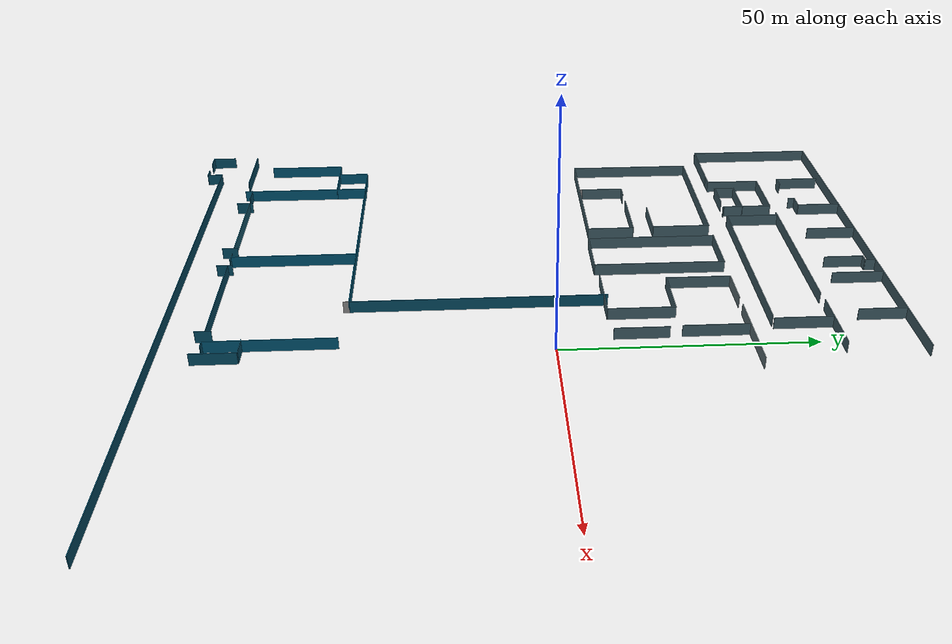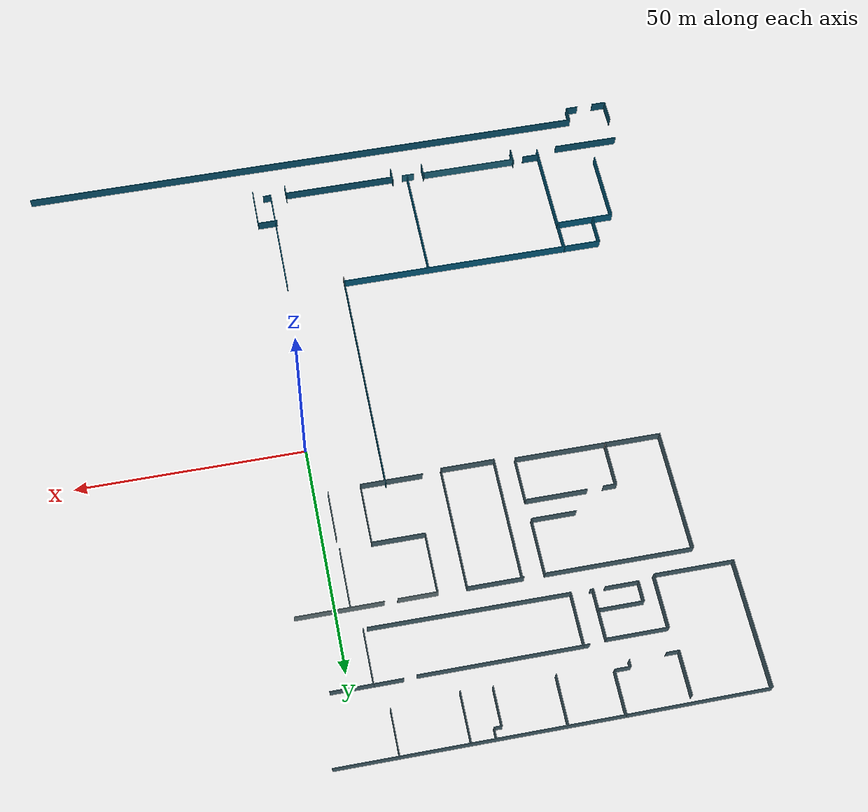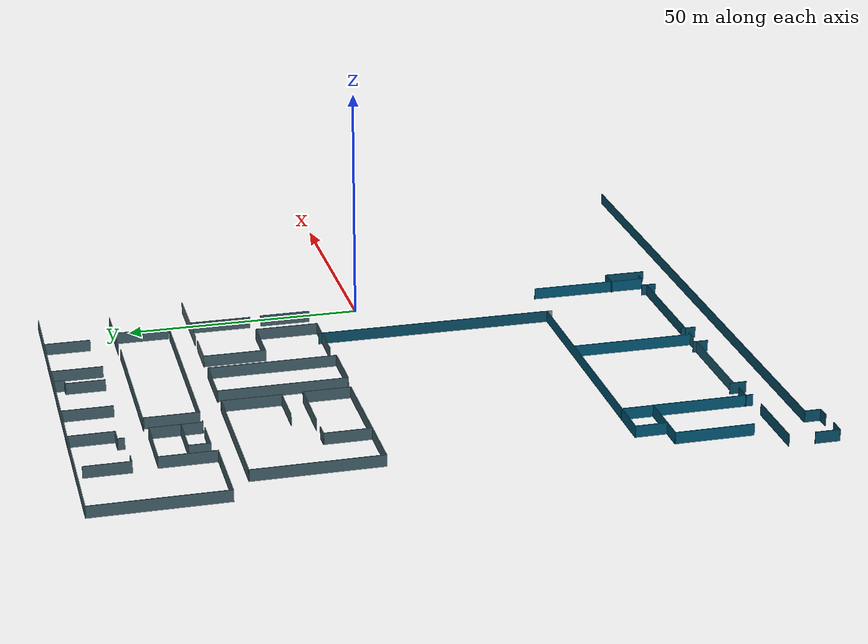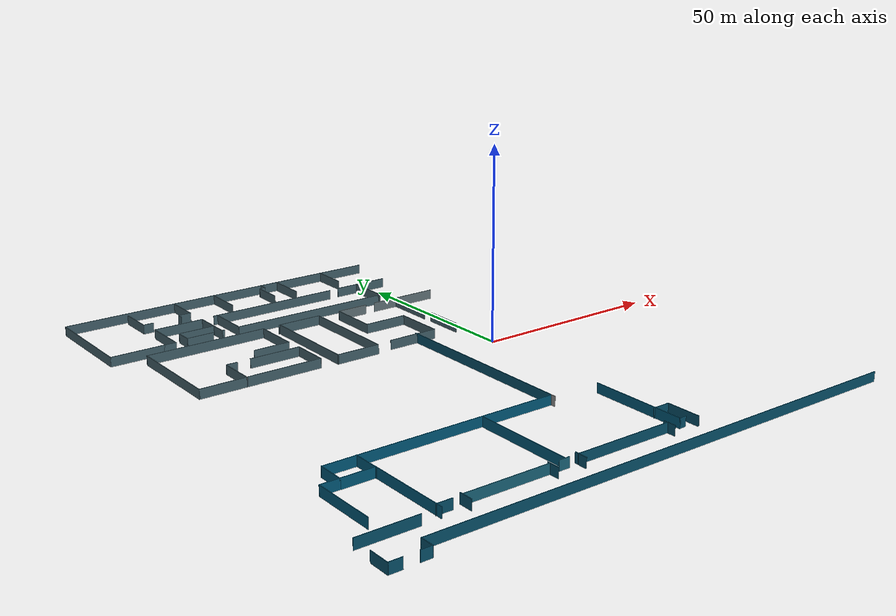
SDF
<sdf version="1.6">
 <model name="eceb">
  <pose>2.10284 -4.41124 0 0 -0 0</pose>
  <link name="Wall_10">
   <collision name="Wall_10_Collision">
    <geometry><box><size>7.25 0.15 2.5</size></box></geometry>
    <pose>0 0 1.25 0 -0 0</pose>
   </collision>
   <visual name="Wall_10_Visual">
    <pose>0 0 1.25 0 -0 0</pose>
    <geometry><box><size>7.25 0.15 2.5</size></box></geometry>
    <material>
     <script><uri>file://media/materials/scripts/gazebo.material</uri><name>Gazebo/Grey</name></script>
     <ambient>0.282353 0.403922 0.447059 1</ambient>
    </material>
    <meta><layer>0</layer></meta>
   </visual>
   <pose>-61.0369 46.7249 0 0 -0 0</pose>
  </link>
  <link name="Wall_102">
   <collision name="Wall_102_Collision">
    <geometry><box><size>12 0.15 2.5</size></box></geometry>
    <pose>0 0 1.25 0 -0 0</pose>
   </collision>
   <visual name="Wall_102_Visual">
    <pose>0 0 1.25 0 -0 0</pose>
    <geometry><box><size>12 0.15 2.5</size></box></geometry>
    <material>
     <script><uri>file://media/materials/scripts/gazebo.material</uri><name>Gazebo/Grey</name></script>
     <ambient>0.282353 0.403922 0.447059 1</ambient>
    </material>
    <meta><layer>0</layer></meta>
   </visual>
   <pose>-35.6171 41.6407 0 0 -0 0</pose>
  </link>
  <link name="Wall_103">
   <collision name="Wall_103_Collision">
    <geometry><box><size>27.25 0.15 2.5</size></box></geometry>
    <pose>0 0 1.25 0 -0 0</pose>
   </collision>
   <visual name="Wall_103_Visual">
    <pose>0 0 1.25 0 -0 0</pose>
    <geometry><box><size>27.25 0.15 2.5</size></box></geometry>
    <material>
     <script><uri>file://media/materials/scripts/gazebo.material</uri><name>Gazebo/Grey</name></script>
     <ambient>0.282353 0.403922 0.447059 1</ambient>
    </material>
    <meta><layer>0</layer></meta>
   </visual>
   <pose>-29.6921 28.0907 0 0 -0 -1.5708</pose>
  </link>
  <link name="Wall_104">
   <collision name="Wall_104_Collision">
    <geometry><box><size>11.75 0.15 2.5</size></box></geometry>
    <pose>0 0 1.25 0 -0 0</pose>
   </collision>
   <visual name="Wall_104_Visual">
    <pose>0 0 1.25 0 -0 0</pose>
    <geometry><box><size>11.75 0.15 2.5</size></box></geometry>
    <material>
     <script><uri>file://media/materials/scripts/gazebo.material</uri><name>Gazebo/Grey</name></script>
     <ambient>0.282353 0.403922 0.447059 1</ambient>
    </material>
    <meta><layer>0</layer></meta>
   </visual>
   <pose>-35.4921 14.5407 0 0 -0 3.14159</pose>
  </link>
  <link name="Wall_105">
   <collision name="Wall_105_Collision">
    <geometry><box><size>27.25 0.15 2.5</size></box></geometry>
    <pose>0 0 1.25 0 -0 0</pose>
   </collision>
   <visual name="Wall_105_Visual">
    <pose>0 0 1.25 0 -0 0</pose>
    <geometry><box><size>27.25 0.15 2.5</size></box></geometry>
    <material>
     <script><uri>file://media/materials/scripts/gazebo.material</uri><name>Gazebo/Grey</name></script>
     <ambient>0.282353 0.403922 0.447059 1</ambient>
    </material>
    <meta><layer>0</layer></meta>
   </visual>
   <pose>-41.2921 28.0907 0 0 -0 1.5708</pose>
  </link>
  <link name="Wall_107">
   <collision name="Wall_107_Collision">
    <geometry><box><size>13.25 0.15 2.5</size></box></geometry>
    <pose>0 0 1.25 0 -0 0</pose>
   </collision>
   <visual name="Wall_107_Visual">
    <pose>0 0 1.25 0 -0 0</pose>
    <geometry><box><size>13.25 0.15 2.5</size></box></geometry>
    <material>
     <script><uri>file://media/materials/scripts/gazebo.material</uri><name>Gazebo/Grey</name></script>
     <ambient>0.282353 0.403922 0.447059 1</ambient>
    </material>
    <meta><layer>0</layer></meta>
   </visual>
   <pose>-23.5412 35.0069 0 0 -0 -1.5708</pose>
  </link>
  <link name="Wall_108">
   <collision name="Wall_108_Collision">
    <geometry><box><size>11.5 0.15 2.5</size></box></geometry>
    <pose>0 0 1.25 0 -0 0</pose>
   </collision>
   <visual name="Wall_108_Visual">
    <pose>0 0 1.25 0 -0 0</pose>
    <geometry><box><size>11.5 0.15 2.5</size></box></geometry>
    <material>
     <script><uri>file://media/materials/scripts/gazebo.material</uri><name>Gazebo/Grey</name></script>
     <ambient>0.282353 0.403922 0.447059 1</ambient>
    </material>
    <meta><layer>0</layer></meta>
   </visual>
   <pose>-17.8662 28.4569 0 0 -0 0</pose>
  </link>
  <link name="Wall_109">
   <collision name="Wall_109_Collision">
    <geometry><box><size>13.5 0.15 2.5</size></box></geometry>
    <pose>0 0 1.25 0 -0 0</pose>
   </collision>
   <visual name="Wall_109_Visual">
    <pose>0 0 1.25 0 -0 0</pose>
    <geometry><box><size>13.5 0.15 2.5</size></box></geometry>
    <material>
     <script><uri>file://media/materials/scripts/gazebo.material</uri><name>Gazebo/Grey</name></script>
     <ambient>0.282353 0.403922 0.447059 1</ambient>
    </material>
    <meta><layer>0</layer></meta>
   </visual>
   <pose>-12.1912 21.7819 0 0 -0 -1.5708</pose>
  </link>
  <link name="Wall_110">
   <collision name="Wall_110_Collision">
    <geometry><box><size>13.5 0.15 2.5</size></box></geometry>
    <pose>0 0 1.25 0 -0 0</pose>
   </collision>
   <visual name="Wall_110_Visual">
    <pose>0 0 1.25 0 -0 0</pose>
    <geometry><box><size>13.5 0.15 2.5</size></box></geometry>
    <material>
     <script><uri>file://media/materials/scripts/gazebo.material</uri><name>Gazebo/Grey</name></script>
     <ambient>0.282353 0.403922 0.447059 1</ambient>
    </material>
    <meta><layer>0</layer></meta>
   </visual>
   <pose>-18.8662 15.1069 0 0 -0 3.14159</pose>
  </link>
  <link name="Wall_112">
   <collision name="Wall_112_Collision">
    <geometry><box><size>8.5 0.15 2.5</size></box></geometry>
    <pose>0 0 1.25 0 -0 0</pose>
   </collision>
   <visual name="Wall_112_Visual">
    <pose>0 0 1.25 0 -0 0</pose>
    <geometry><box><size>8.5 0.15 2.5</size></box></geometry>
    <material>
     <script><uri>file://media/materials/scripts/gazebo.material</uri><name>Gazebo/Grey</name></script>
     <ambient>0.411765 0.486275 0.509804 1</ambient>
    </material>
    <meta><layer>0</layer></meta>
   </visual>
   <pose>-19.3662 41.557 0 0 -0 0</pose>
  </link>
  <link name="Wall_114">
   <collision name="Wall_114_Collision">
    <geometry><box><size>18.75 0.15 2.5</size></box></geometry>
    <pose>0 0 1.25 0 -0 0</pose>
   </collision>
   <visual name="Wall_114_Visual">
    <pose>0 0 1.25 0 -0 0</pose>
    <geometry><box><size>18.75 0.15 2.5</size></box></geometry>
    <material>
     <script><uri>file://media/materials/scripts/gazebo.material</uri><name>Gazebo/Grey</name></script>
     <ambient>0.411765 0.486275 0.509804 1</ambient>
    </material>
    <meta><layer>0</layer></meta>
   </visual>
   <pose>-3.06602 41.6234 0 0 -0 0</pose>
  </link>
  <link name="Wall_12">
   <collision name="Wall_12_Collision">
    <geometry><box><size>4.5 0.15 2.5</size></box></geometry>
    <pose>0 0 1.25 0 -0 0</pose>
   </collision>
   <visual name="Wall_12_Visual">
    <pose>0 0 1.25 0 -0 0</pose>
    <geometry><box><size>4.5 0.15 2.5</size></box></geometry>
    <material>
     <script><uri>file://media/materials/scripts/gazebo.material</uri><name>Gazebo/Grey</name></script>
     <ambient>0.282353 0.403922 0.447059 1</ambient>
    </material>
    <meta><layer>0</layer></meta>
   </visual>
   <pose>-54.9869 48.8998 0 0 -0 -1.5708</pose>
  </link>
  <link name="Wall_124">
   <collision name="Wall_124_Collision">
    <geometry><box><size>13 0.15 2.5</size></box></geometry>
    <pose>0 0 1.25 0 -0 0</pose>
   </collision>
   <visual name="Wall_124_Visual">
    <pose>0 0 1.25 0 -0 0</pose>
    <geometry><box><size>13 0.15 2.5</size></box></geometry>
    <material>
     <script><uri>file://media/materials/scripts/gazebo.material</uri><name>Gazebo/Grey</name></script>
     <ambient>0.282353 0.403922 0.447059 1</ambient>
    </material>
    <meta><layer>0</layer></meta>
   </visual>
   <pose>-5.3618 35.0405 0 0 -0 1.5708</pose>
  </link>
  <link name="Wall_13">
   <collision name="Wall_13_Collision">
    <geometry><box><size>0.75 0.15 2.5</size></box></geometry>
    <pose>0 0 1.25 0 -0 0</pose>
   </collision>
   <visual name="Wall_13_Visual">
    <pose>0 0 1.25 0 -0 0</pose>
    <geometry><box><size>0.75 0.15 2.5</size></box></geometry>
    <material>
     <script><uri>file://media/materials/scripts/gazebo.material</uri><name>Gazebo/Grey</name></script>
     <ambient>0.282353 0.403922 0.447059 1</ambient>
    </material>
    <meta><layer>0</layer></meta>
   </visual>
   <pose>-54.6869 46.7249 0 0 -0 0</pose>
  </link>
  <link name="Wall_131">
   <collision name="Wall_131_Collision">
    <geometry><box><size>10.75 0.15 2.5</size></box></geometry>
    <pose>0 0 1.25 0 -0 0</pose>
   </collision>
   <visual name="Wall_131_Visual">
    <pose>0 0 1.25 0 -0 0</pose>
    <geometry><box><size>10.75 0.15 2.5</size></box></geometry>
    <material>
     <script><uri>file://media/materials/scripts/gazebo.material</uri><name>Gazebo/Grey</name></script>
     <ambient>0.282353 0.403922 0.447059 1</ambient>
    </material>
    <meta><layer>0</layer></meta>
   </visual>
   <pose>-5.10917 20.8238 0 0 -0 -1.5708</pose>
  </link>
  <link name="Wall_134">
   <collision name="Wall_134_Collision">
    <geometry><box><size>51 0.15 2.5</size></box></geometry>
    <pose>0 0 1.25 0 -0 0</pose>
   </collision>
   <visual name="Wall_134_Visual">
    <pose>0 0 1.25 0 -0 0</pose>
    <geometry><box><size>51 0.15 2.5</size></box></geometry>
    <material>
     <script><uri>file://media/materials/scripts/gazebo.material</uri><name>Gazebo/Grey</name></script>
     <ambient>0.0313726 0.333333 0.443137 1</ambient>
    </material>
    <meta><layer>0</layer></meta>
   </visual>
   <pose>-17.5625 -9.64396 0 0 -0 -1.5708</pose>
  </link>
  <link name="Wall_135">
   <collision name="Wall_135_Collision">
    <geometry><box><size>59.75 0.15 2.5</size></box></geometry>
    <pose>0 0 1.25 0 -0 0</pose>
   </collision>
   <visual name="Wall_135_Visual">
    <pose>0 0 1.25 0 -0 0</pose>
    <geometry><box><size>59.75 0.15 2.5</size></box></geometry>
    <material>
     <script><uri>file://media/materials/scripts/gazebo.material</uri><name>Gazebo/Grey</name></script>
     <ambient>0.00784314 0.372549 0.505882 1</ambient>
    </material>
    <meta><layer>0</layer></meta>
   </visual>
   <pose>-47.3625 -35.069 0 0 -0 3.14159</pose>
  </link>
  <link name="Wall_137">
   <collision name="Wall_137_Collision">
    <geometry><box><size>6.75 0.15 2.5</size></box></geometry>
    <pose>0 0 1.25 0 -0 0</pose>
   </collision>
   <visual name="Wall_137_Visual">
    <pose>0 0 1.25 0 -0 0</pose>
    <geometry><box><size>6.75 0.15 2.5</size></box></geometry>
    <material>
     <script><uri>file://media/materials/scripts/gazebo.material</uri><name>Gazebo/Grey</name></script>
     <ambient>0.00784314 0.372549 0.505882 1</ambient>
    </material>
    <meta><layer>0</layer></meta>
   </visual>
   <pose>-77.1625 -38.369 0 0 -0 -1.5708</pose>
  </link>
  <link name="Wall_138">
   <collision name="Wall_138_Collision">
    <geometry><box><size>4.75 0.15 2.5</size></box></geometry>
    <pose>0 0 1.25 0 -0 0</pose>
   </collision>
   <visual name="Wall_138_Visual">
    <pose>0 0 1.25 0 -0 0</pose>
    <geometry><box><size>4.75 0.15 2.5</size></box></geometry>
    <material>
     <script><uri>file://media/materials/scripts/gazebo.material</uri><name>Gazebo/Grey</name></script>
     <ambient>0.00784314 0.372549 0.505882 1</ambient>
    </material>
    <meta><layer>0</layer></meta>
   </visual>
   <pose>-79.4625 -41.669 0 0 -0 3.14159</pose>
  </link>
  <link name="Wall_139">
   <collision name="Wall_139_Collision">
    <geometry><box><size>16.5 0.15 2.5</size></box></geometry>
    <pose>0 0 1.25 0 -0 0</pose>
   </collision>
   <visual name="Wall_139_Visual">
    <pose>0 0 1.25 0 -0 0</pose>
    <geometry><box><size>16.5 0.15 2.5</size></box></geometry>
    <material>
     <script><uri>file://media/materials/scripts/gazebo.material</uri><name>Gazebo/Grey</name></script>
     <ambient>0.00784314 0.372549 0.505882 1</ambient>
    </material>
    <meta><layer>0</layer></meta>
   </visual>
   <pose>-81.7625 -49.844 0 0 -0 -1.5708</pose>
  </link>
  <link name="Wall_141">
   <collision name="Wall_141_Collision">
    <geometry><box><size>14.75 0.15 2.5</size></box></geometry>
    <pose>0 0 1.25 0 -0 0</pose>
   </collision>
   <visual name="Wall_141_Visual">
    <pose>0 0 1.25 0 -0 0</pose>
    <geometry><box><size>14.75 0.15 2.5</size></box></geometry>
    <material>
     <script><uri>file://media/materials/scripts/gazebo.material</uri><name>Gazebo/Grey</name></script>
     <ambient>0.0313726 0.333333 0.443137 1</ambient>
    </material>
    <meta><layer>0</layer></meta>
   </visual>
   <pose>-80.7569 -62.752 0 0 -0 0</pose>
  </link>
  <link name="Wall_143">
   <collision name="Wall_143_Collision">
    <geometry><box><size>5.25 0.15 2.5</size></box></geometry>
    <pose>0 0 1.25 0 -0 0</pose>
   </collision>
   <visual name="Wall_143_Visual">
    <pose>0 0 1.25 0 -0 0</pose>
    <geometry><box><size>5.25 0.15 2.5</size></box></geometry>
    <material>
     <script><uri>file://media/materials/scripts/gazebo.material</uri><name>Gazebo/Grey</name></script>
     <ambient>0.0313726 0.333333 0.443137 1</ambient>
    </material>
    <meta><layer>0</layer></meta>
   </visual>
   <pose>-88.1514 -70.7787 0 0 -0 -1.5708</pose>
  </link>
  <link name="Wall_144">
   <collision name="Wall_144_Collision">
    <geometry><box><size>3.25 0.15 2.5</size></box></geometry>
    <pose>0 0 1.25 0 -0 0</pose>
   </collision>
   <visual name="Wall_144_Visual">
    <pose>0 0 1.25 0 -0 0</pose>
    <geometry><box><size>3.25 0.15 2.5</size></box></geometry>
    <material>
     <script><uri>file://media/materials/scripts/gazebo.material</uri><name>Gazebo/Grey</name></script>
     <ambient>0.0313726 0.333333 0.443137 1</ambient>
    </material>
    <meta><layer>0</layer></meta>
   </visual>
   <pose>-86.6014 -73.3287 0 0 -0 0</pose>
  </link>
  <link name="Wall_146">
   <collision name="Wall_146_Collision">
    <geometry><box><size>2.75 0.15 2.5</size></box></geometry>
    <pose>0 0 1.25 0 -0 0</pose>
   </collision>
   <visual name="Wall_146_Visual">
    <pose>0 0 1.25 0 -0 0</pose>
    <geometry><box><size>2.75 0.15 2.5</size></box></geometry>
    <material>
     <script><uri>file://media/materials/scripts/gazebo.material</uri><name>Gazebo/Grey</name></script>
     <ambient>0.0313726 0.333333 0.443137 1</ambient>
    </material>
    <meta><layer>0</layer></meta>
   </visual>
   <pose>-79.9583 -73.2333 0 0 -0 0</pose>
  </link>
  <link name="Wall_147">
   <collision name="Wall_147_Collision">
    <geometry><box><size>3.5 0.15 2.5</size></box></geometry>
    <pose>0 0 1.25 0 -0 0</pose>
   </collision>
   <visual name="Wall_147_Visual">
    <pose>0 0 1.25 0 -0 0</pose>
    <geometry><box><size>3.5 0.15 2.5</size></box></geometry>
    <material>
     <script><uri>file://media/materials/scripts/gazebo.material</uri><name>Gazebo/Grey</name></script>
     <ambient>0.0313726 0.333333 0.443137 1</ambient>
    </material>
    <meta><layer>0</layer></meta>
   </visual>
   <pose>-78.6583 -71.5583 0 0 -0 1.5708</pose>
  </link>
  <link name="Wall_148">
   <collision name="Wall_148_Collision">
    <geometry><box><size>129.5 0.15 2.5</size></box></geometry>
    <pose>0 0 1.25 0 -0 0</pose>
   </collision>
   <visual name="Wall_148_Visual">
    <pose>0 0 1.25 0 -0 0</pose>
    <geometry><box><size>129.5 0.15 2.5</size></box></geometry>
    <material>
     <script><uri>file://media/materials/scripts/gazebo.material</uri><name>Gazebo/Grey</name></script>
     <ambient>0.0313726 0.333333 0.443137 1</ambient>
    </material>
    <meta><layer>0</layer></meta>
   </visual>
   <pose>-13.9833 -69.8833 0 0 -0 0</pose>
  </link>
  <link name="Wall_15">
   <collision name="Wall_15_Collision">
    <geometry><box><size>1.25 0.15 2.5</size></box></geometry>
    <pose>0 0 1.25 0 -0 0</pose>
   </collision>
   <visual name="Wall_15_Visual">
    <pose>0 0 1.25 0 -0 0</pose>
    <geometry><box><size>1.25 0.15 2.5</size></box></geometry>
    <material>
     <script><uri>file://media/materials/scripts/gazebo.material</uri><name>Gazebo/Grey</name></script>
     <ambient>0.282353 0.403922 0.447059 1</ambient>
    </material>
    <meta><layer>0</layer></meta>
   </visual>
   <pose>-50.8487 57.9626 0 0 -0 0</pose>
  </link>
  <link name="Wall_156">
   <collision name="Wall_156_Collision">
    <geometry><box><size>21.25 0.15 2.5</size></box></geometry>
    <pose>0 0 1.25 0 -0 0</pose>
   </collision>
   <visual name="Wall_156_Visual">
    <pose>0 0 1.25 0 -0 0</pose>
    <geometry><box><size>21.25 0.15 2.5</size></box></geometry>
    <material>
     <script><uri>file://media/materials/scripts/gazebo.material</uri><name>Gazebo/Grey</name></script>
     <ambient>0.00784314 0.372549 0.505882 1</ambient>
    </material>
    <meta><layer>0</layer></meta>
   </visual>
   <pose>-68.8592 -52.1746 0 0 -0 1.5708</pose>
  </link>
  <link name="Wall_157">
   <collision name="Wall_157_Collision">
    <geometry><box><size>8.4534 0.15 2.5</size></box></geometry>
    <pose>0 0 1.25 0 -0 0</pose>
   </collision>
   <visual name="Wall_157_Visual">
    <pose>0 0 1.25 0 -0 0</pose>
    <geometry><box><size>8.4534 0.15 2.5</size></box></geometry>
    <material>
     <script><uri>file://media/materials/scripts/gazebo.material</uri><name>Gazebo/Grey</name></script>
     <ambient>0.00784314 0.372549 0.505882 1</ambient>
    </material>
    <meta><layer>0</layer></meta>
   </visual>
   <pose>-73.0109 -41.6468 0 0 -0 -3.13625</pose>
  </link>
  <link name="Wall_159">
   <collision name="Wall_159_Collision">
    <geometry><box><size>7 0.15 2.5</size></box></geometry>
    <pose>0 0 1.25 0 -0 0</pose>
   </collision>
   <visual name="Wall_159_Visual">
    <pose>0 0 1.25 0 -0 0</pose>
    <geometry><box><size>7 0.15 2.5</size></box></geometry>
    <material>
     <script><uri>file://media/materials/scripts/gazebo.material</uri><name>Gazebo/Grey</name></script>
     <ambient>0.00784314 0.372549 0.505882 1</ambient>
    </material>
    <meta><layer>0</layer></meta>
   </visual>
   <pose>-68.9119 -38.4042 0 0 -0 -1.5708</pose>
  </link>
  <link name="Wall_16">
   <collision name="Wall_16_Collision">
    <geometry><box><size>11.5 0.15 2.5</size></box></geometry>
    <pose>0 0 1.25 0 -0 0</pose>
   </collision>
   <visual name="Wall_16_Visual">
    <pose>0 0 1.25 0 -0 0</pose>
    <geometry><box><size>11.5 0.15 2.5</size></box></geometry>
    <material>
     <script><uri>file://media/materials/scripts/gazebo.material</uri><name>Gazebo/Grey</name></script>
     <ambient>0.282353 0.403922 0.447059 1</ambient>
    </material>
    <meta><layer>0</layer></meta>
   </visual>
   <pose>-50.2987 52.2876 0 0 -0 -1.5708</pose>
  </link>
  <link name="Wall_161">
   <collision name="Wall_161_Collision">
    <geometry><box><size>4 0.15 2.5</size></box></geometry>
    <pose>0 0 1.25 0 -0 0</pose>
   </collision>
   <visual name="Wall_161_Visual">
    <pose>0 0 1.25 0 -0 0</pose>
    <geometry><box><size>4 0.15 2.5</size></box></geometry>
    <material>
     <script><uri>file://media/materials/scripts/gazebo.material</uri><name>Gazebo/Grey</name></script>
     <ambient>0.0313726 0.333333 0.443137 1</ambient>
    </material>
    <meta><layer>0</layer></meta>
   </visual>
   <pose>-67.0768 -61.2451 0 0 -0 3.14159</pose>
  </link>
  <link name="Wall_163">
   <collision name="Wall_163_Collision">
    <geometry><box><size>3.5 0.15 2.5</size></box></geometry>
    <pose>0 0 1.25 0 -0 0</pose>
   </collision>
   <visual name="Wall_163_Visual">
    <pose>0 0 1.25 0 -0 0</pose>
    <geometry><box><size>3.5 0.15 2.5</size></box></geometry>
    <material>
     <script><uri>file://media/materials/scripts/gazebo.material</uri><name>Gazebo/Grey</name></script>
     <ambient>0.0313726 0.333333 0.443137 1</ambient>
    </material>
    <meta><layer>0</layer></meta>
   </visual>
   <pose>-62.6452 -62.0149 0 0 -0 -1.5708</pose>
  </link>
  <link name="Wall_166">
   <collision name="Wall_166_Collision">
    <geometry><box><size>21.5 0.15 2.5</size></box></geometry>
    <pose>0 0 1.25 0 -0 0</pose>
   </collision>
   <visual name="Wall_166_Visual">
    <pose>0 0 1.25 0 -0 0</pose>
    <geometry><box><size>21.5 0.15 2.5</size></box></geometry>
    <material>
     <script><uri>file://media/materials/scripts/gazebo.material</uri><name>Gazebo/Grey</name></script>
     <ambient>0.109804 0.415686 0.505882 1</ambient>
    </material>
    <meta><layer>0</layer></meta>
   </visual>
   <pose>-51.8547 -61.0074 0 0 -0 0</pose>
  </link>
  <link name="Wall_168">
   <collision name="Wall_168_Collision">
    <geometry><box><size>3.25 0.15 2.5</size></box></geometry>
    <pose>0 0 1.25 0 -0 0</pose>
   </collision>
   <visual name="Wall_168_Visual">
    <pose>0 0 1.25 0 -0 0</pose>
    <geometry><box><size>3.25 0.15 2.5</size></box></geometry>
    <material>
     <script><uri>file://media/materials/scripts/gazebo.material</uri><name>Gazebo/Grey</name></script>
     <ambient>0.0313726 0.333333 0.443137 1</ambient>
    </material>
    <meta><layer>0</layer></meta>
   </visual>
   <pose>-40.9887 -61.8787 0 0 -0 -1.5708</pose>
  </link>
  <link name="Wall_17">
   <collision name="Wall_17_Collision">
    <geometry><box><size>42.5 0.15 2.5</size></box></geometry>
    <pose>0 0 1.25 0 -0 0</pose>
   </collision>
   <visual name="Wall_17_Visual">
    <pose>0 0 1.25 0 -0 0</pose>
    <geometry><box><size>42.5 0.15 2.5</size></box></geometry>
    <material>
     <script><uri>file://media/materials/scripts/gazebo.material</uri><name>Gazebo/Grey</name></script>
     <ambient>0.282353 0.403922 0.447059 1</ambient>
    </material>
    <meta><layer>0</layer></meta>
   </visual>
   <pose>-29.1237 46.5292 0 0 -0 -0.00394</pose>
  </link>
  <link name="Wall_170">
   <collision name="Wall_170_Collision">
    <geometry><box><size>2.75 0.15 2.5</size></box></geometry>
    <pose>0 0 1.25 0 -0 0</pose>
   </collision>
   <visual name="Wall_170_Visual">
    <pose>0 0 1.25 0 -0 0</pose>
    <geometry><box><size>2.75 0.15 2.5</size></box></geometry>
    <material>
     <script><uri>file://media/materials/scripts/gazebo.material</uri><name>Gazebo/Grey</name></script>
     <ambient>0.109804 0.415686 0.505882 1</ambient>
    </material>
    <meta><layer>0</layer></meta>
   </visual>
   <pose>-37.3257 -61.0997 0 0 -0 0</pose>
  </link>
  <link name="Wall_172">
   <collision name="Wall_172_Collision">
    <geometry><box><size>26 0.15 2.5</size></box></geometry>
    <pose>0 0 1.25 0 -0 0</pose>
   </collision>
   <visual name="Wall_172_Visual">
    <pose>0 0 1.25 0 -0 0</pose>
    <geometry><box><size>26 0.15 2.5</size></box></geometry>
    <material>
     <script><uri>file://media/materials/scripts/gazebo.material</uri><name>Gazebo/Grey</name></script>
     <ambient>0.00784314 0.372549 0.505882 1</ambient>
    </material>
    <meta><layer>0</layer></meta>
   </visual>
   <pose>-37.0975 -48.0841 0 0 -0 -1.5708</pose>
  </link>
  <link name="Wall_177">
   <collision name="Wall_177_Collision">
    <geometry><box><size>1.25 0.15 2.5</size></box></geometry>
    <pose>0 0 1.25 0 -0 0</pose>
   </collision>
   <visual name="Wall_177_Visual">
    <pose>0 0 1.25 0 -0 0</pose>
    <geometry><box><size>1.25 0.15 2.5</size></box></geometry>
    <material>
     <script><uri>file://media/materials/scripts/gazebo.material</uri><name>Gazebo/Grey</name></script>
     <ambient>1 1 1 1</ambient>
    </material>
    <meta><layer>0</layer></meta>
   </visual>
   <pose>-17.5625 -35.619 0 0 -0 -1.5708</pose>
  </link>
  <link name="Wall_180">
   <collision name="Wall_180_Collision">
    <geometry><box><size>3.25 0.15 2.5</size></box></geometry>
    <pose>0 0 1.25 0 -0 0</pose>
   </collision>
   <visual name="Wall_180_Visual">
    <pose>0 0 1.25 0 -0 0</pose>
    <geometry><box><size>3.25 0.15 2.5</size></box></geometry>
    <material>
     <script><uri>file://media/materials/scripts/gazebo.material</uri><name>Gazebo/Grey</name></script>
     <ambient>0.0313726 0.333333 0.443137 1</ambient>
    </material>
    <meta><layer>0</layer></meta>
   </visual>
   <pose>-33.5892 -61.8114 0 0 -0 -1.5708</pose>
  </link>
  <link name="Wall_182">
   <collision name="Wall_182_Collision">
    <geometry><box><size>25.5 0.15 2.5</size></box></geometry>
    <pose>0 0 1.25 0 -0 0</pose>
   </collision>
   <visual name="Wall_182_Visual">
    <pose>0 0 1.25 0 -0 0</pose>
    <geometry><box><size>25.5 0.15 2.5</size></box></geometry>
    <material>
     <script><uri>file://media/materials/scripts/gazebo.material</uri><name>Gazebo/Grey</name></script>
     <ambient>0.0313726 0.333333 0.443137 1</ambient>
    </material>
    <meta><layer>0</layer></meta>
   </visual>
   <pose>-20.9591 -61.1593 0 0 -0 0</pose>
  </link>
  <link name="Wall_184">
   <collision name="Wall_184_Collision">
    <geometry><box><size>3.25 0.15 2.5</size></box></geometry>
    <pose>0 0 1.25 0 -0 0</pose>
   </collision>
   <visual name="Wall_184_Visual">
    <pose>0 0 1.25 0 -0 0</pose>
    <geometry><box><size>3.25 0.15 2.5</size></box></geometry>
    <material>
     <script><uri>file://media/materials/scripts/gazebo.material</uri><name>Gazebo/Grey</name></script>
     <ambient>0.0313726 0.333333 0.443137 1</ambient>
    </material>
    <meta><layer>0</layer></meta>
   </visual>
   <pose>-8.26712 -61.6318 0 0 -0 -1.5708</pose>
  </link>
  <link name="Wall_186">
   <collision name="Wall_186_Collision">
    <geometry><box><size>25.25 0.15 2.5</size></box></geometry>
    <pose>0 0 1.25 0 -0 0</pose>
   </collision>
   <visual name="Wall_186_Visual">
    <pose>0 0 1.25 0 -0 0</pose>
    <geometry><box><size>25.25 0.15 2.5</size></box></geometry>
    <material>
     <script><uri>file://media/materials/scripts/gazebo.material</uri><name>Gazebo/Grey</name></script>
     <ambient>0.00784314 0.372549 0.505882 1</ambient>
    </material>
    <meta><layer>0</layer></meta>
   </visual>
   <pose>-4.65246 -48.6917 0 0 -0 1.5708</pose>
  </link>
  <link name="Wall_194">
   <collision name="Wall_194_Collision">
    <geometry><box><size>9 0.15 2.5</size></box></geometry>
    <pose>0 0 1.25 0 -0 0</pose>
   </collision>
   <visual name="Wall_194_Visual">
    <pose>0 0 1.25 0 -0 0</pose>
    <geometry><box><size>9 0.15 2.5</size></box></geometry>
    <material>
     <script><uri>file://media/materials/scripts/gazebo.material</uri><name>Gazebo/Grey</name></script>
     <ambient>0.0313726 0.333333 0.443137 1</ambient>
    </material>
    <meta><layer>0</layer></meta>
   </visual>
   <pose>-0.646828 -58.4483 0 0 -0 1.5708</pose>
  </link>
  <link name="Wall_195">
   <collision name="Wall_195_Collision">
    <geometry><box><size>4.5 0.15 2.5</size></box></geometry>
    <pose>0 0 1.25 0 -0 0</pose>
   </collision>
   <visual name="Wall_195_Visual">
    <pose>0 0 1.25 0 -0 0</pose>
    <geometry><box><size>4.5 0.15 2.5</size></box></geometry>
    <material>
     <script><uri>file://media/materials/scripts/gazebo.material</uri><name>Gazebo/Grey</name></script>
     <ambient>0.0313726 0.333333 0.443137 1</ambient>
    </material>
    <meta><layer>0</layer></meta>
   </visual>
   <pose>-2.82183 -54.0233 0 0 -0 3.14159</pose>
  </link>
  <link name="Wall_197">
   <collision name="Wall_197_Collision">
    <geometry><box><size>1.88728 0.15 2.5</size></box></geometry>
    <pose>0 0 1.25 0 -0 0</pose>
   </collision>
   <visual name="Wall_197_Visual">
    <pose>0 0 1.25 0 -0 0</pose>
    <geometry><box><size>1.88728 0.15 2.5</size></box></geometry>
    <material>
     <script><uri>file://media/materials/scripts/gazebo.material</uri><name>Gazebo/Grey</name></script>
     <ambient>0.0313726 0.333333 0.443137 1</ambient>
    </material>
    <meta><layer>0</layer></meta>
   </visual>
   <pose>-3.78515 -61.1937 0 0 -0 -3.08631</pose>
  </link>
  <link name="Wall_2">
   <collision name="Wall_2_Collision">
    <geometry><box><size>27.5 0.15 2.5</size></box></geometry>
    <pose>0 0 1.25 0 -0 0</pose>
   </collision>
   <visual name="Wall_2_Visual">
    <pose>0 0 1.25 0 -0 0</pose>
    <geometry><box><size>27.5 0.15 2.5</size></box></geometry>
    <material>
     <script><uri>file://media/materials/scripts/gazebo.material</uri><name>Gazebo/Grey</name></script>
     <ambient>0.282353 0.403922 0.447059 1</ambient>
    </material>
    <meta><layer>0</layer></meta>
   </visual>
   <pose>-85.0369 59.4999 0 0 -0 -1.5708</pose>
  </link>
  <link name="Wall_29">
   <collision name="Wall_29_Collision">
    <geometry><box><size>59 0.15 2.5</size></box></geometry>
    <pose>0 0 1.25 0 -0 0</pose>
   </collision>
   <visual name="Wall_29_Visual">
    <pose>0 0 1.25 0 -0 0</pose>
    <geometry><box><size>59 0.15 2.5</size></box></geometry>
    <material>
     <script><uri>file://media/materials/scripts/gazebo.material</uri><name>Gazebo/Grey</name></script>
     <ambient>0.282353 0.403922 0.447059 1</ambient>
    </material>
    <meta><layer>0</layer></meta>
   </visual>
   <pose>-25.6165 73.2966 0 0 -0 3.14159</pose>
  </link>
  <link name="Wall_3">
   <collision name="Wall_3_Collision">
    <geometry><box><size>14 0.15 2.5</size></box></geometry>
    <pose>0 0 1.25 0 -0 0</pose>
   </collision>
   <visual name="Wall_3_Visual">
    <pose>0 0 1.25 0 -0 0</pose>
    <geometry><box><size>14 0.15 2.5</size></box></geometry>
    <material>
     <script><uri>file://media/materials/scripts/gazebo.material</uri><name>Gazebo/Grey</name></script>
     <ambient>0.282353 0.403922 0.447059 1</ambient>
    </material>
    <meta><layer>0</layer></meta>
   </visual>
   <pose>-78.1119 45.8249 0 0 -0 0</pose>
  </link>
  <link name="Wall_32">
   <collision name="Wall_32_Collision">
    <geometry><box><size>30.1457 0.15 2.5</size></box></geometry>
    <pose>0 0 1.25 0 -0 0</pose>
   </collision>
   <visual name="Wall_32_Visual">
    <pose>0 0 1.25 0 -0 0</pose>
    <geometry><box><size>30.1457 0.15 2.5</size></box></geometry>
    <material>
     <script><uri>file://media/materials/scripts/gazebo.material</uri><name>Gazebo/Grey</name></script>
     <ambient>0.282353 0.403922 0.447059 1</ambient>
    </material>
    <meta><layer>0</layer></meta>
   </visual>
   <pose>-70.0392 73.2357 0 0 -0 0.00406</pose>
  </link>
  <link name="Wall_34">
   <collision name="Wall_34_Collision">
    <geometry><box><size>9.5 0.15 2.5</size></box></geometry>
    <pose>0 0 1.25 0 -0 0</pose>
   </collision>
   <visual name="Wall_34_Visual">
    <pose>0 0 1.25 0 -0 0</pose>
    <geometry><box><size>9.5 0.15 2.5</size></box></geometry>
    <material>
     <script><uri>file://media/materials/scripts/gazebo.material</uri><name>Gazebo/Grey</name></script>
     <ambient>0.282353 0.403922 0.447059 1</ambient>
    </material>
    <meta><layer>0</layer></meta>
   </visual>
   <pose>-68.8084 67.1704 0 0 -0 -1.5708</pose>
  </link>
  <link name="Wall_35">
   <collision name="Wall_35_Collision">
    <geometry><box><size>2.75 0.15 2.5</size></box></geometry>
    <pose>0 0 1.25 0 -0 0</pose>
   </collision>
   <visual name="Wall_35_Visual">
    <pose>0 0 1.25 0 -0 0</pose>
    <geometry><box><size>2.75 0.15 2.5</size></box></geometry>
    <material>
     <script><uri>file://media/materials/scripts/gazebo.material</uri><name>Gazebo/Grey</name></script>
     <ambient>0.282353 0.403922 0.447059 1</ambient>
    </material>
    <meta><layer>0</layer></meta>
   </visual>
   <pose>-67.5083 62.4954 0 0 -0 0</pose>
  </link>
  <link name="Wall_37">
   <collision name="Wall_37_Collision">
    <geometry><box><size>9.5 0.15 2.5</size></box></geometry>
    <pose>0 0 1.25 0 -0 0</pose>
   </collision>
   <visual name="Wall_37_Visual">
    <pose>0 0 1.25 0 -0 0</pose>
    <geometry><box><size>9.5 0.15 2.5</size></box></geometry>
    <material>
     <script><uri>file://media/materials/scripts/gazebo.material</uri><name>Gazebo/Grey</name></script>
     <ambient>0.282353 0.403922 0.447059 1</ambient>
    </material>
    <meta><layer>0</layer></meta>
   </visual>
   <pose>-55.0415 68.6216 0 0 -0 -1.5708</pose>
  </link>
  <link name="Wall_38">
   <collision name="Wall_38_Collision">
    <geometry><box><size>3.5 0.15 2.5</size></box></geometry>
    <pose>0 0 1.25 0 -0 0</pose>
   </collision>
   <visual name="Wall_38_Visual">
    <pose>0 0 1.25 0 -0 0</pose>
    <geometry><box><size>3.5 0.15 2.5</size></box></geometry>
    <material>
     <script><uri>file://media/materials/scripts/gazebo.material</uri><name>Gazebo/Grey</name></script>
     <ambient>0.282353 0.403922 0.447059 1</ambient>
    </material>
    <meta><layer>0</layer></meta>
   </visual>
   <pose>-56.7165 63.9466 0 0 -0 3.14159</pose>
  </link>
  <link name="Wall_4">
   <collision name="Wall_4_Collision">
    <geometry><box><size>3.25 0.15 2.5</size></box></geometry>
    <pose>0 0 1.25 0 -0 0</pose>
   </collision>
   <visual name="Wall_4_Visual">
    <pose>0 0 1.25 0 -0 0</pose>
    <geometry><box><size>3.25 0.15 2.5</size></box></geometry>
    <material>
     <script><uri>file://media/materials/scripts/gazebo.material</uri><name>Gazebo/Grey</name></script>
     <ambient>0.282353 0.403922 0.447059 1</ambient>
    </material>
    <meta><layer>0</layer></meta>
   </visual>
   <pose>-69.6369 45.8249 0 0 -0 0</pose>
  </link>
  <link name="Wall_43">
   <collision name="Wall_43_Collision">
    <geometry><box><size>1.5 0.15 2.5</size></box></geometry>
    <pose>0 0 1.25 0 -0 0</pose>
   </collision>
   <visual name="Wall_43_Visual">
    <pose>0 0 1.25 0 -0 0</pose>
    <geometry><box><size>1.5 0.15 2.5</size></box></geometry>
    <material>
     <script><uri>file://media/materials/scripts/gazebo.material</uri><name>Gazebo/Grey</name></script>
     <ambient>0.282353 0.403922 0.447059 1</ambient>
    </material>
    <meta><layer>0</layer></meta>
   </visual>
   <pose>-58.3915 63.2716 0 0 -0 -1.5708</pose>
  </link>
  <link name="Wall_45">
   <collision name="Wall_45_Collision">
    <geometry><box><size>10.5 0.15 2.5</size></box></geometry>
    <pose>0 0 1.25 0 -0 0</pose>
   </collision>
   <visual name="Wall_45_Visual">
    <pose>0 0 1.25 0 -0 0</pose>
    <geometry><box><size>10.5 0.15 2.5</size></box></geometry>
    <material>
     <script><uri>file://media/materials/scripts/gazebo.material</uri><name>Gazebo/Grey</name></script>
     <ambient>0.282353 0.403922 0.447059 1</ambient>
    </material>
    <meta><layer>0</layer></meta>
   </visual>
   <pose>-43.275 68.0437 0 0 -0 -1.5708</pose>
  </link>
  <link name="Wall_47">
   <collision name="Wall_47_Collision">
    <geometry><box><size>2.25 0.15 2.5</size></box></geometry>
    <pose>0 0 1.25 0 -0 0</pose>
   </collision>
   <visual name="Wall_47_Visual">
    <pose>0 0 1.25 0 -0 0</pose>
    <geometry><box><size>2.25 0.15 2.5</size></box></geometry>
    <material>
     <script><uri>file://media/materials/scripts/gazebo.material</uri><name>Gazebo/Grey</name></script>
     <ambient>0.282353 0.403922 0.447059 1</ambient>
    </material>
    <meta><layer>0</layer></meta>
   </visual>
   <pose>-28.7778 72.0954 0 0 -0 -1.5708</pose>
  </link>
  <link name="Wall_48">
   <collision name="Wall_48_Collision">
    <geometry><box><size>1.75 0.15 2.5</size></box></geometry>
    <pose>0 0 1.25 0 -0 0</pose>
   </collision>
   <visual name="Wall_48_Visual">
    <pose>0 0 1.25 0 -0 0</pose>
    <geometry><box><size>1.75 0.15 2.5</size></box></geometry>
    <material>
     <script><uri>file://media/materials/scripts/gazebo.material</uri><name>Gazebo/Grey</name></script>
     <ambient>0.282353 0.403922 0.447059 1</ambient>
    </material>
    <meta><layer>0</layer></meta>
   </visual>
   <pose>-29.5778 71.0455 0 0 -0 3.14159</pose>
  </link>
  <link name="Wall_49">
   <collision name="Wall_49_Collision">
    <geometry><box><size>8.25 0.15 2.5</size></box></geometry>
    <pose>0 0 1.25 0 -0 0</pose>
   </collision>
   <visual name="Wall_49_Visual">
    <pose>0 0 1.25 0 -0 0</pose>
    <geometry><box><size>8.25 0.15 2.5</size></box></geometry>
    <material>
     <script><uri>file://media/materials/scripts/gazebo.material</uri><name>Gazebo/Grey</name></script>
     <ambient>0.282353 0.403922 0.447059 1</ambient>
    </material>
    <meta><layer>0</layer></meta>
   </visual>
   <pose>-30.3778 66.9954 0 0 -0 -1.5708</pose>
  </link>
  <link name="Wall_5">
   <collision name="Wall_5_Collision">
    <geometry><box><size>11.75 0.15 2.5</size></box></geometry>
    <pose>0 0 1.25 0 -0 0</pose>
   </collision>
   <visual name="Wall_5_Visual">
    <pose>0 0 1.25 0 -0 0</pose>
    <geometry><box><size>11.75 0.15 2.5</size></box></geometry>
    <material>
     <script><uri>file://media/materials/scripts/gazebo.material</uri><name>Gazebo/Grey</name></script>
     <ambient>0.282353 0.403922 0.447059 1</ambient>
    </material>
    <meta><layer>0</layer></meta>
   </visual>
   <pose>-68.0869 51.6249 0 0 -0 1.5708</pose>
  </link>
  <link name="Wall_51">
   <collision name="Wall_51_Collision">
    <geometry><box><size>10.75 0.15 2.5</size></box></geometry>
    <pose>0 0 1.25 0 -0 0</pose>
   </collision>
   <visual name="Wall_51_Visual">
    <pose>0 0 1.25 0 -0 0</pose>
    <geometry><box><size>10.75 0.15 2.5</size></box></geometry>
    <material>
     <script><uri>file://media/materials/scripts/gazebo.material</uri><name>Gazebo/Grey</name></script>
     <ambient>0.282353 0.403922 0.447059 1</ambient>
    </material>
    <meta><layer>0</layer></meta>
   </visual>
   <pose>-23.7258 67.9919 0 0 -0 -1.5708</pose>
  </link>
  <link name="Wall_53">
   <collision name="Wall_53_Collision">
    <geometry><box><size>9.75 0.15 2.5</size></box></geometry>
    <pose>0 0 1.25 0 -0 0</pose>
   </collision>
   <visual name="Wall_53_Visual">
    <pose>0 0 1.25 0 -0 0</pose>
    <geometry><box><size>9.75 0.15 2.5</size></box></geometry>
    <material>
     <script><uri>file://media/materials/scripts/gazebo.material</uri><name>Gazebo/Grey</name></script>
     <ambient>0.282353 0.403922 0.447059 1</ambient>
    </material>
    <meta><layer>0</layer></meta>
   </visual>
   <pose>-9.44831 68.4919 0 0 -0 -1.5708</pose>
  </link>
  <link name="Wall_57">
   <collision name="Wall_57_Collision">
    <geometry><box><size>34.5 0.15 2.5</size></box></geometry>
    <pose>0 0 1.25 0 -0 0</pose>
   </collision>
   <visual name="Wall_57_Visual">
    <pose>0 0 1.25 0 -0 0</pose>
    <geometry><box><size>34.5 0.15 2.5</size></box></geometry>
    <material>
     <script><uri>file://media/materials/scripts/gazebo.material</uri><name>Gazebo/Grey</name></script>
     <ambient>0.282353 0.403922 0.447059 1</ambient>
    </material>
    <meta><layer>0</layer></meta>
   </visual>
   <pose>-33.1237 57.9626 0 0 -0 0</pose>
  </link>
  <link name="Wall_6">
   <collision name="Wall_6_Collision">
    <geometry><box><size>13.25 0.15 2.5</size></box></geometry>
    <pose>0 0 1.25 0 -0 0</pose>
   </collision>
   <visual name="Wall_6_Visual">
    <pose>0 0 1.25 0 -0 0</pose>
    <geometry><box><size>13.25 0.15 2.5</size></box></geometry>
    <material>
     <script><uri>file://media/materials/scripts/gazebo.material</uri><name>Gazebo/Grey</name></script>
     <ambient>0.282353 0.403922 0.447059 1</ambient>
    </material>
    <meta><layer>0</layer></meta>
   </visual>
   <pose>-61.5369 57.4248 0 0 -0 0</pose>
  </link>
  <link name="Wall_60">
   <collision name="Wall_60_Collision">
    <geometry><box><size>6.25 0.15 2.5</size></box></geometry>
    <pose>0 0 1.25 0 -0 0</pose>
   </collision>
   <visual name="Wall_60_Visual">
    <pose>0 0 1.25 0 -0 0</pose>
    <geometry><box><size>6.25 0.15 2.5</size></box></geometry>
    <material>
     <script><uri>file://media/materials/scripts/gazebo.material</uri><name>Gazebo/Grey</name></script>
     <ambient>0.282353 0.403922 0.447059 1</ambient>
    </material>
    <meta><layer>0</layer></meta>
   </visual>
   <pose>-10.1439 58.1781 0 0 -0 0</pose>
  </link>
  <link name="Wall_61">
   <collision name="Wall_61_Collision">
    <geometry><box><size>11.75 0.15 2.5</size></box></geometry>
    <pose>0 0 1.25 0 -0 0</pose>
   </collision>
   <visual name="Wall_61_Visual">
    <pose>0 0 1.25 0 -0 0</pose>
    <geometry><box><size>11.75 0.15 2.5</size></box></geometry>
    <material>
     <script><uri>file://media/materials/scripts/gazebo.material</uri><name>Gazebo/Grey</name></script>
     <ambient>0.282353 0.403922 0.447059 1</ambient>
    </material>
    <meta><layer>0</layer></meta>
   </visual>
   <pose>-7.09385 52.3781 0 0 -0 -1.5708</pose>
  </link>
  <link name="Wall_63">
   <collision name="Wall_63_Collision">
    <geometry><box><size>9 0.15 2.5</size></box></geometry>
    <pose>0 0 1.25 0 -0 0</pose>
   </collision>
   <visual name="Wall_63_Visual">
    <pose>0 0 1.25 0 -0 0</pose>
    <geometry><box><size>9 0.15 2.5</size></box></geometry>
    <material>
     <script><uri>file://media/materials/scripts/gazebo.material</uri><name>Gazebo/Grey</name></script>
     <ambient>0.282353 0.403922 0.447059 1</ambient>
    </material>
    <meta><layer>0</layer></meta>
   </visual>
   <pose>-2.66885 58.1781 0 0 -0 0</pose>
  </link>
  <link name="Wall_7">
   <collision name="Wall_7_Collision">
    <geometry><box><size>6.5 0.15 2.5</size></box></geometry>
    <pose>0 0 1.25 0 -0 0</pose>
   </collision>
   <visual name="Wall_7_Visual">
    <pose>0 0 1.25 0 -0 0</pose>
    <geometry><box><size>6.5 0.15 2.5</size></box></geometry>
    <material>
     <script><uri>file://media/materials/scripts/gazebo.material</uri><name>Gazebo/Grey</name></script>
     <ambient>0.282353 0.403922 0.447059 1</ambient>
    </material>
    <meta><layer>0</layer></meta>
   </visual>
   <pose>-54.9869 54.2499 0 0 -0 -1.5708</pose>
  </link>
  <link name="Wall_8">
   <collision name="Wall_8_Collision">
    <geometry><box><size>9.75 0.15 2.5</size></box></geometry>
    <pose>0 0 1.25 0 -0 0</pose>
   </collision>
   <visual name="Wall_8_Visual">
    <pose>0 0 1.25 0 -0 0</pose>
    <geometry><box><size>9.75 0.15 2.5</size></box></geometry>
    <material>
     <script><uri>file://media/materials/scripts/gazebo.material</uri><name>Gazebo/Grey</name></script>
     <ambient>0.282353 0.403922 0.447059 1</ambient>
    </material>
    <meta><layer>0</layer></meta>
   </visual>
   <pose>-59.7869 51.0749 0 0 -0 3.14159</pose>
  </link>
  <link name="Wall_80">
   <collision name="Wall_80_Collision">
    <geometry><box><size>26.75 0.15 2.5</size></box></geometry>
    <pose>0 0 1.25 0 -0 0</pose>
   </collision>
   <visual name="Wall_80_Visual">
    <pose>0 0 1.25 0 -0 0</pose>
    <geometry><box><size>26.75 0.15 2.5</size></box></geometry>
    <material>
     <script><uri>file://media/materials/scripts/gazebo.material</uri><name>Gazebo/Grey</name></script>
     <ambient>0.282353 0.403922 0.447059 1</ambient>
    </material>
    <meta><layer>0</layer></meta>
   </visual>
   <pose>-77.6772 28.3223 0 0 -0 -1.5708</pose>
  </link>
  <link name="Wall_81">
   <collision name="Wall_81_Collision">
    <geometry><box><size>32 0.15 2.5</size></box></geometry>
    <pose>0 0 1.25 0 -0 0</pose>
   </collision>
   <visual name="Wall_81_Visual">
    <pose>0 0 1.25 0 -0 0</pose>
    <geometry><box><size>32 0.15 2.5</size></box></geometry>
    <material>
     <script><uri>file://media/materials/scripts/gazebo.material</uri><name>Gazebo/Grey</name></script>
     <ambient>0.282353 0.403922 0.447059 1</ambient>
    </material>
    <meta><layer>0</layer></meta>
   </visual>
   <pose>-61.7522 15.0223 0 0 -0 0</pose>
  </link>
  <link name="Wall_82">
   <collision name="Wall_82_Collision">
    <geometry><box><size>10 0.15 2.5</size></box></geometry>
    <pose>0 0 1.25 0 -0 0</pose>
   </collision>
   <visual name="Wall_82_Visual">
    <pose>0 0 1.25 0 -0 0</pose>
    <geometry><box><size>10 0.15 2.5</size></box></geometry>
    <material>
     <script><uri>file://media/materials/scripts/gazebo.material</uri><name>Gazebo/Grey</name></script>
     <ambient>0.282353 0.403922 0.447059 1</ambient>
    </material>
    <meta><layer>0</layer></meta>
   </visual>
   <pose>-45.8272 19.9473 0 0 -0 1.5708</pose>
  </link>
  <link name="Wall_83">
   <collision name="Wall_83_Collision">
    <geometry><box><size>13.5 0.15 2.5</size></box></geometry>
    <pose>0 0 1.25 0 -0 0</pose>
   </collision>
   <visual name="Wall_83_Visual">
    <pose>0 0 1.25 0 -0 0</pose>
    <geometry><box><size>13.5 0.15 2.5</size></box></geometry>
    <material>
     <script><uri>file://media/materials/scripts/gazebo.material</uri><name>Gazebo/Grey</name></script>
     <ambient>0.282353 0.403922 0.447059 1</ambient>
    </material>
    <meta><layer>0</layer></meta>
   </visual>
   <pose>-52.5022 24.8723 0 0 -0 3.14159</pose>
  </link>
  <link name="Wall_85">
   <collision name="Wall_85_Collision">
    <geometry><box><size>3 0.15 2.5</size></box></geometry>
    <pose>0 0 1.25 0 -0 0</pose>
   </collision>
   <visual name="Wall_85_Visual">
    <pose>0 0 1.25 0 -0 0</pose>
    <geometry><box><size>3 0.15 2.5</size></box></geometry>
    <material>
     <script><uri>file://media/materials/scripts/gazebo.material</uri><name>Gazebo/Grey</name></script>
     <ambient>0.282353 0.403922 0.447059 1</ambient>
    </material>
    <meta><layer>0</layer></meta>
   </visual>
   <pose>-64.1821 24.7849 0 0 -0 3.14159</pose>
  </link>
  <link name="Wall_86">
   <collision name="Wall_86_Collision">
    <geometry><box><size>10 0.15 2.5</size></box></geometry>
    <pose>0 0 1.25 0 -0 0</pose>
   </collision>
   <visual name="Wall_86_Visual">
    <pose>0 0 1.25 0 -0 0</pose>
    <geometry><box><size>10 0.15 2.5</size></box></geometry>
    <material>
     <script><uri>file://media/materials/scripts/gazebo.material</uri><name>Gazebo/Grey</name></script>
     <ambient>0.282353 0.403922 0.447059 1</ambient>
    </material>
    <meta><layer>0</layer></meta>
   </visual>
   <pose>-65.6071 19.8599 0 0 -0 -1.5708</pose>
  </link>
  <link name="Wall_87">
   <collision name="Wall_87_Collision">
    <geometry><box><size>0.75 0.15 2.5</size></box></geometry>
    <pose>0 0 1.25 0 -0 0</pose>
   </collision>
   <visual name="Wall_87_Visual">
    <pose>0 0 1.25 0 -0 0</pose>
    <geometry><box><size>0.75 0.15 2.5</size></box></geometry>
    <material>
     <script><uri>file://media/materials/scripts/gazebo.material</uri><name>Gazebo/Grey</name></script>
     <ambient>1 1 1 1</ambient>
    </material>
    <meta><layer>0</layer></meta>
   </visual>
   <pose>-65.6071 15.2349 0 0 -0 1.5708</pose>
  </link>
  <link name="Wall_9">
   <collision name="Wall_9_Collision">
    <geometry><box><size>4.5 0.15 2.5</size></box></geometry>
    <pose>0 0 1.25 0 -0 0</pose>
   </collision>
   <visual name="Wall_9_Visual">
    <pose>0 0 1.25 0 -0 0</pose>
    <geometry><box><size>4.5 0.15 2.5</size></box></geometry>
    <material>
     <script><uri>file://media/materials/scripts/gazebo.material</uri><name>Gazebo/Grey</name></script>
     <ambient>0.282353 0.403922 0.447059 1</ambient>
    </material>
    <meta><layer>0</layer></meta>
   </visual>
   <pose>-64.5869 48.8998 0 0 -0 -1.5708</pose>
  </link>
  <link name="Wall_92">
   <collision name="Wall_92_Collision">
    <geometry><box><size>31.75 0.15 2.5</size></box></geometry>
    <pose>0 0 1.25 0 -0 0</pose>
   </collision>
   <visual name="Wall_92_Visual">
    <pose>0 0 1.25 0 -0 0</pose>
    <geometry><box><size>31.75 0.15 2.5</size></box></geometry>
    <material>
     <script><uri>file://media/materials/scripts/gazebo.material</uri><name>Gazebo/Grey</name></script>
     <ambient>0.282353 0.403922 0.447059 1</ambient>
    </material>
    <meta><layer>0</layer></meta>
   </visual>
   <pose>-61.8772 41.6223 0 0 -0 0</pose>
  </link>
  <link name="Wall_93">
   <collision name="Wall_93_Collision">
    <geometry><box><size>12.5 0.15 2.5</size></box></geometry>
    <pose>0 0 1.25 0 -0 0</pose>
   </collision>
   <visual name="Wall_93_Visual">
    <pose>0 0 1.25 0 -0 0</pose>
    <geometry><box><size>12.5 0.15 2.5</size></box></geometry>
    <material>
     <script><uri>file://media/materials/scripts/gazebo.material</uri><name>Gazebo/Grey</name></script>
     <ambient>0.282353 0.403922 0.447059 1</ambient>
    </material>
    <meta><layer>0</layer></meta>
   </visual>
   <pose>-46.0772 35.4473 0 0 -0 -1.5708</pose>
  </link>
  <link name="Wall_94">
   <collision name="Wall_94_Collision">
    <geometry><box><size>9.75 0.15 2.5</size></box></geometry>
    <pose>0 0 1.25 0 -0 0</pose>
   </collision>
   <visual name="Wall_94_Visual">
    <pose>0 0 1.25 0 -0 0</pose>
    <geometry><box><size>9.75 0.15 2.5</size></box></geometry>
    <material>
     <script><uri>file://media/materials/scripts/gazebo.material</uri><name>Gazebo/Grey</name></script>
     <ambient>0.282353 0.403922 0.447059 1</ambient>
    </material>
    <meta><layer>0</layer></meta>
   </visual>
   <pose>-50.8772 29.2723 0 0 -0 3.14159</pose>
  </link>
  <static>1</static>
 </model>
</sdf>
